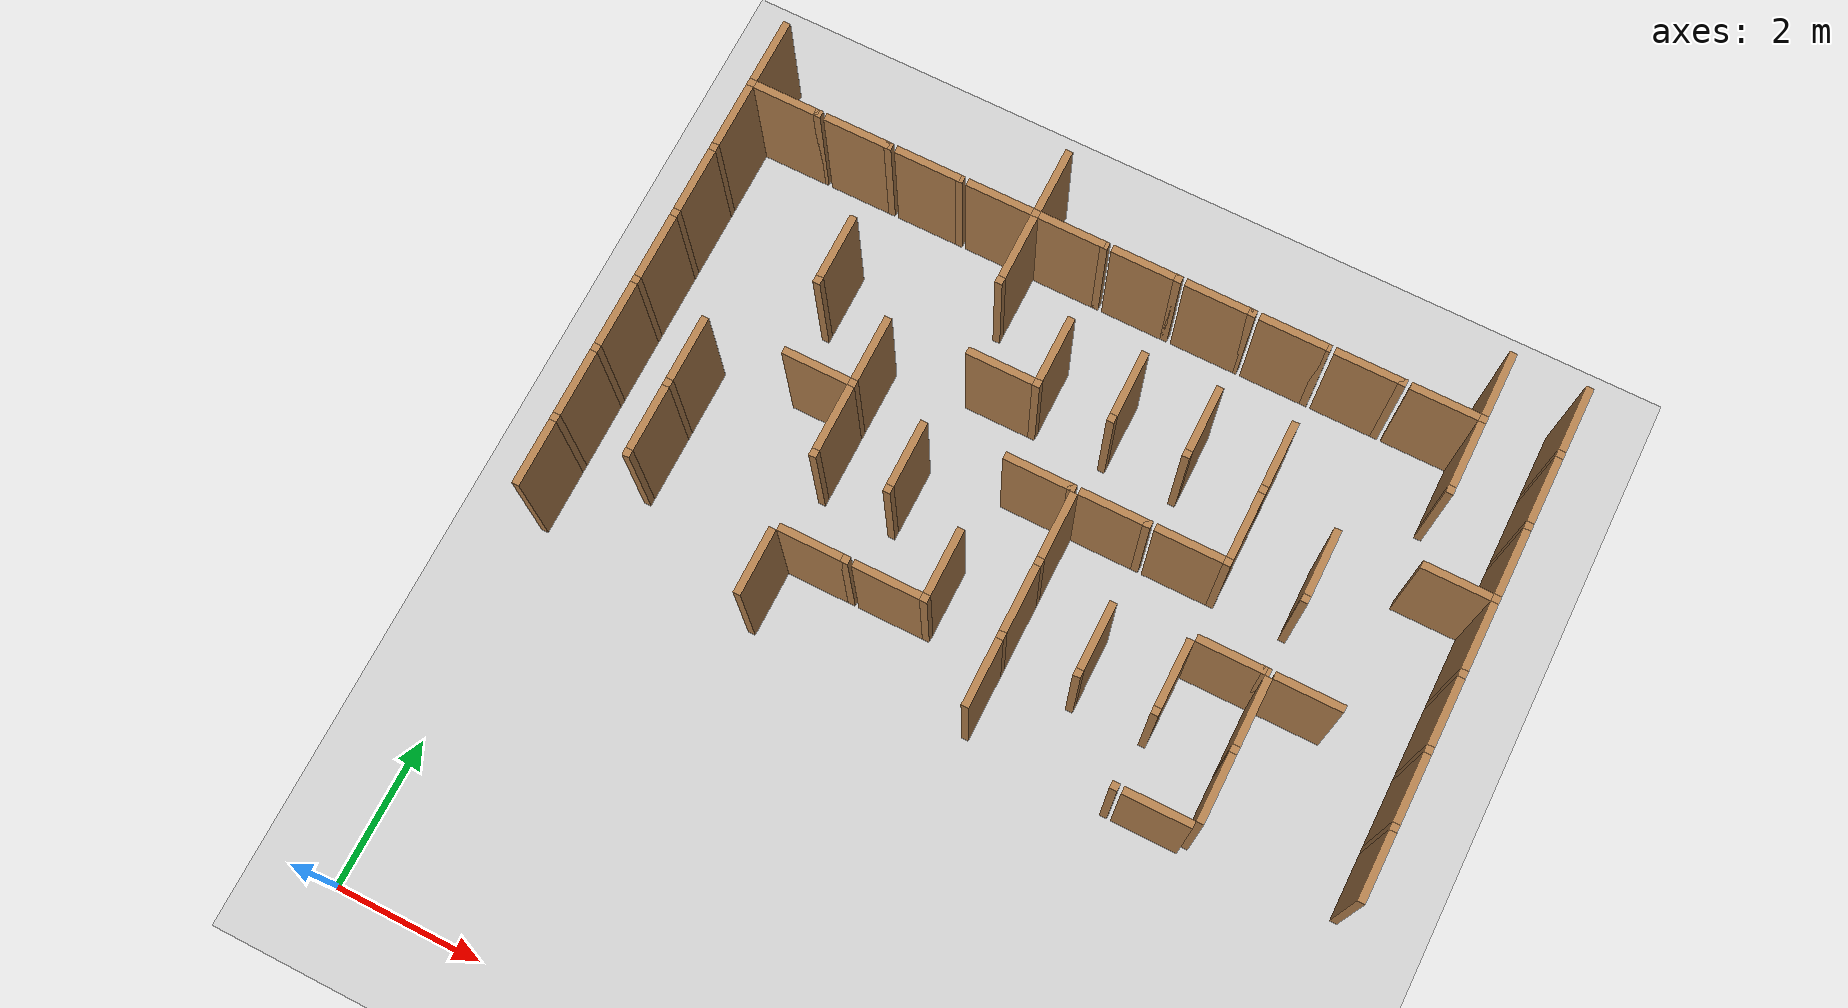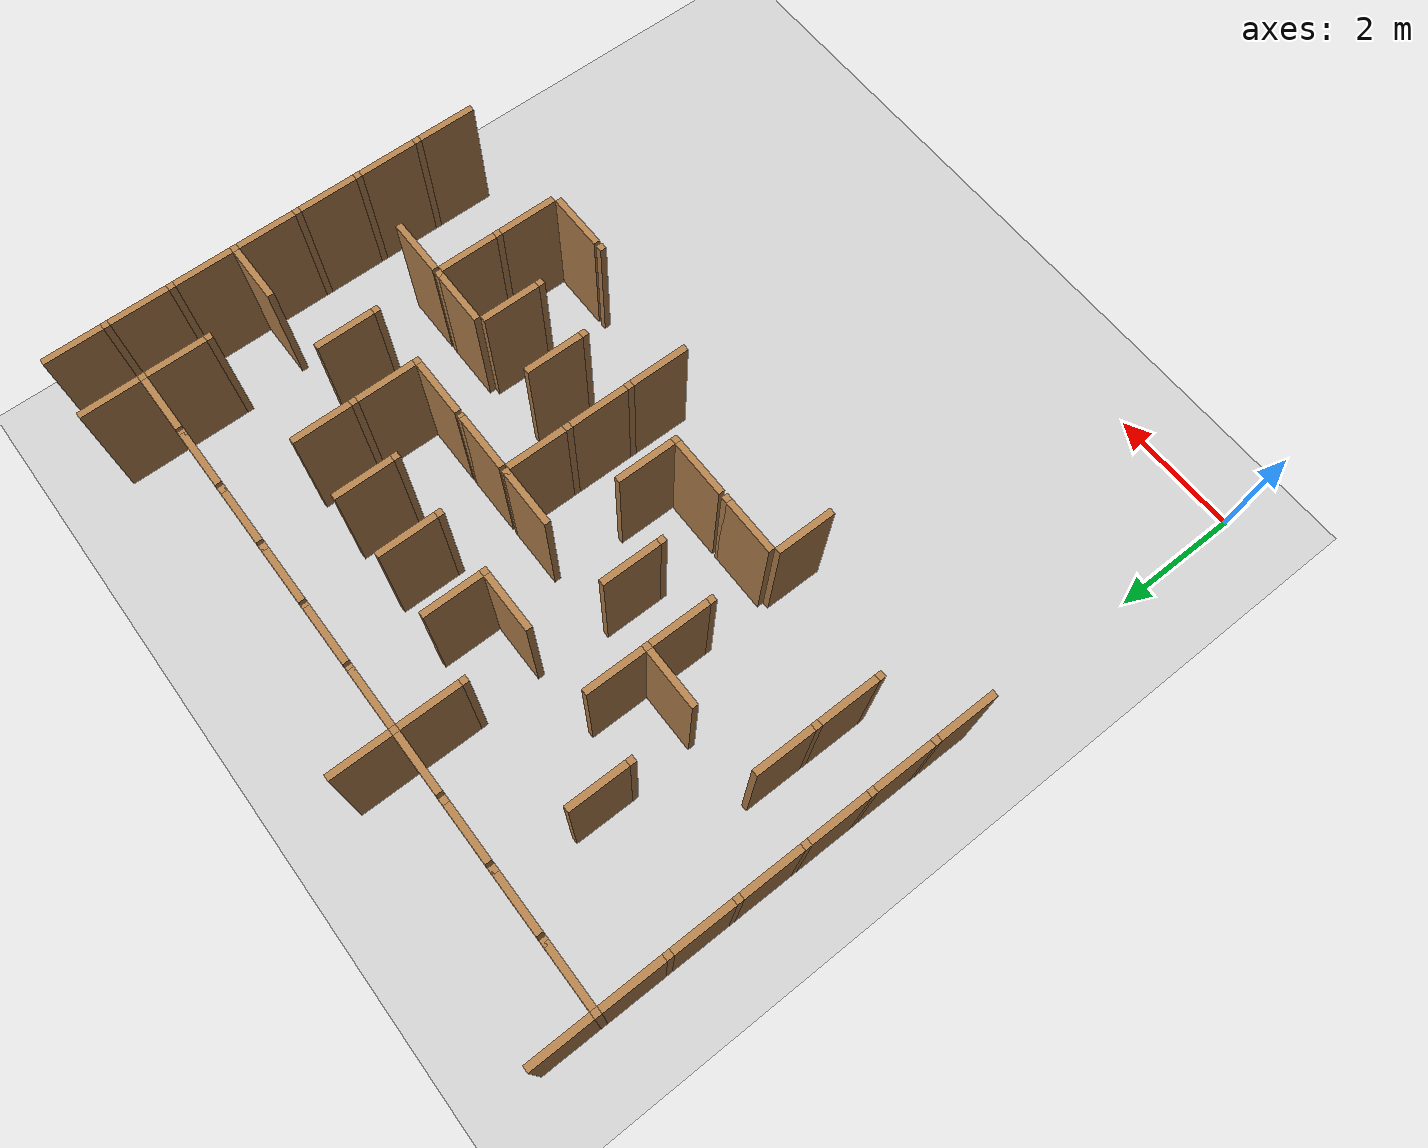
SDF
<sdf version="1.6">
 <world name="default">
  <include><uri>model://sun</uri></include>
  <model name="ground_plane">
   <static>true</static>
   <link name="link">
    <collision name="collision"><geometry><plane><size>12.0 12.0</size></plane></geometry></collision>
    <visual name="visual">
     <cast_shadows>false</cast_shadows>
     <geometry><plane><size>12.0 12.0</size></plane></geometry>
     <material>
      <script><uri>file://media/materials/scripts/gazebo.material</uri><name>Gazebo/Grey</name></script>
     </material>
    </visual>
   </link>
   <pose>6.0 6.0 0 0 0 0</pose>
  </model>
  <model name="vwall_5_0">
   <pose>0.0 5.5 1.0 0 0 0</pose>
   <link name="link">
    <collision name="collision"><geometry><box><size>0.1 0.9 2</size></box></geometry></collision>
    <visual name="visual">
     <geometry><box><size>0.1 0.9 2</size></box></geometry>
     <material>
      <script><uri>file://media/materials/scripts/gazebo.material</uri><name>Gazebo/Wood</name></script>
     </material>
    </visual>
   </link>
  </model>
  <model name="vwall_5_3">
   <pose>3.0 5.5 1.0 0 0 0</pose>
   <link name="link">
    <collision name="collision"><geometry><box><size>0.1 0.9 2</size></box></geometry></collision>
    <visual name="visual">
     <geometry><box><size>0.1 0.9 2</size></box></geometry>
     <material>
      <script><uri>file://media/materials/scripts/gazebo.material</uri><name>Gazebo/Wood</name></script>
     </material>
    </visual>
   </link>
  </model>
  <model name="vwall_5_6">
   <pose>6.0 5.5 1.0 0 0 0</pose>
   <link name="link">
    <collision name="collision"><geometry><box><size>0.1 0.9 2</size></box></geometry></collision>
    <visual name="visual">
     <geometry><box><size>0.1 0.9 2</size></box></geometry>
     <material>
      <script><uri>file://media/materials/scripts/gazebo.material</uri><name>Gazebo/Wood</name></script>
     </material>
    </visual>
   </link>
  </model>
  <model name="vwall_5_9">
   <pose>9.0 5.5 1.0 0 0 0</pose>
   <link name="link">
    <collision name="collision"><geometry><box><size>0.1 0.9 2</size></box></geometry></collision>
    <visual name="visual">
     <geometry><box><size>0.1 0.9 2</size></box></geometry>
     <material>
      <script><uri>file://media/materials/scripts/gazebo.material</uri><name>Gazebo/Wood</name></script>
     </material>
    </visual>
   </link>
  </model>
  <model name="vwall_5_11">
   <pose>11.0 5.5 1.0 0 0 0</pose>
   <link name="link">
    <collision name="collision"><geometry><box><size>0.1 0.9 2</size></box></geometry></collision>
    <visual name="visual">
     <geometry><box><size>0.1 0.9 2</size></box></geometry>
     <material>
      <script><uri>file://media/materials/scripts/gazebo.material</uri><name>Gazebo/Wood</name></script>
     </material>
    </visual>
   </link>
  </model>
  <model name="vwall_6_0">
   <pose>0.0 6.5 1.0 0 0 0</pose>
   <link name="link">
    <collision name="collision"><geometry><box><size>0.1 0.9 2</size></box></geometry></collision>
    <visual name="visual">
     <geometry><box><size>0.1 0.9 2</size></box></geometry>
     <material>
      <script><uri>file://media/materials/scripts/gazebo.material</uri><name>Gazebo/Wood</name></script>
     </material>
    </visual>
   </link>
  </model>
  <model name="joint_0.0_6.0">
   <pose>0.0 6.0 1.0 0 0 0</pose>
   <link name="link">
    <collision name="collision"><geometry><box><size>0.1 0.1 2</size></box></geometry></collision>
    <visual name="visual">
     <geometry><box><size>0.1 0.1 2</size></box></geometry>
     <material>
      <script><uri>file://media/materials/scripts/gazebo.material</uri><name>Gazebo/Wood</name></script>
     </material>
    </visual>
   </link>
  </model>
  <model name="vwall_6_1">
   <pose>1.0 6.5 1.0 0 0 0</pose>
   <link name="link">
    <collision name="collision"><geometry><box><size>0.1 0.9 2</size></box></geometry></collision>
    <visual name="visual">
     <geometry><box><size>0.1 0.9 2</size></box></geometry>
     <material>
      <script><uri>file://media/materials/scripts/gazebo.material</uri><name>Gazebo/Wood</name></script>
     </material>
    </visual>
   </link>
  </model>
  <model name="joint_1.0_6.0">
   <pose>1.0 6.0 1.0 0 0 0</pose>
   <link name="link">
    <collision name="collision"><geometry><box><size>0.1 0.1 2</size></box></geometry></collision>
    <visual name="visual">
     <geometry><box><size>0.1 0.1 2</size></box></geometry>
     <material>
      <script><uri>file://media/materials/scripts/gazebo.material</uri><name>Gazebo/Wood</name></script>
     </material>
    </visual>
   </link>
  </model>
  <model name="vwall_6_5">
   <pose>5.0 6.5 1.0 0 0 0</pose>
   <link name="link">
    <collision name="collision"><geometry><box><size>0.1 0.9 2</size></box></geometry></collision>
    <visual name="visual">
     <geometry><box><size>0.1 0.9 2</size></box></geometry>
     <material>
      <script><uri>file://media/materials/scripts/gazebo.material</uri><name>Gazebo/Wood</name></script>
     </material>
    </visual>
   </link>
  </model>
  <model name="joint_5.0_6.0">
   <pose>5.0 6.0 1.0 0 0 0</pose>
   <link name="link">
    <collision name="collision"><geometry><box><size>0.1 0.1 2</size></box></geometry></collision>
    <visual name="visual">
     <geometry><box><size>0.1 0.1 2</size></box></geometry>
     <material>
      <script><uri>file://media/materials/scripts/gazebo.material</uri><name>Gazebo/Wood</name></script>
     </material>
    </visual>
   </link>
  </model>
  <model name="vwall_6_6">
   <pose>6.0 6.5 1.0 0 0 0</pose>
   <link name="link">
    <collision name="collision"><geometry><box><size>0.1 0.9 2</size></box></geometry></collision>
    <visual name="visual">
     <geometry><box><size>0.1 0.9 2</size></box></geometry>
     <material>
      <script><uri>file://media/materials/scripts/gazebo.material</uri><name>Gazebo/Wood</name></script>
     </material>
    </visual>
   </link>
  </model>
  <model name="joint_6.0_6.0">
   <pose>6.0 6.0 1.0 0 0 0</pose>
   <link name="link">
    <collision name="collision"><geometry><box><size>0.1 0.1 2</size></box></geometry></collision>
    <visual name="visual">
     <geometry><box><size>0.1 0.1 2</size></box></geometry>
     <material>
      <script><uri>file://media/materials/scripts/gazebo.material</uri><name>Gazebo/Wood</name></script>
     </material>
    </visual>
   </link>
  </model>
  <model name="vwall_6_7">
   <pose>7.0 6.5 1.0 0 0 0</pose>
   <link name="link">
    <collision name="collision"><geometry><box><size>0.1 0.9 2</size></box></geometry></collision>
    <visual name="visual">
     <geometry><box><size>0.1 0.9 2</size></box></geometry>
     <material>
      <script><uri>file://media/materials/scripts/gazebo.material</uri><name>Gazebo/Wood</name></script>
     </material>
    </visual>
   </link>
  </model>
  <model name="joint_7.0_6.0">
   <pose>7.0 6.0 1.0 0 0 0</pose>
   <link name="link">
    <collision name="collision"><geometry><box><size>0.1 0.1 2</size></box></geometry></collision>
    <visual name="visual">
     <geometry><box><size>0.1 0.1 2</size></box></geometry>
     <material>
      <script><uri>file://media/materials/scripts/gazebo.material</uri><name>Gazebo/Wood</name></script>
     </material>
    </visual>
   </link>
  </model>
  <model name="vwall_6_8">
   <pose>8.0 6.5 1.0 0 0 0</pose>
   <link name="link">
    <collision name="collision"><geometry><box><size>0.1 0.9 2</size></box></geometry></collision>
    <visual name="visual">
     <geometry><box><size>0.1 0.9 2</size></box></geometry>
     <material>
      <script><uri>file://media/materials/scripts/gazebo.material</uri><name>Gazebo/Wood</name></script>
     </material>
    </visual>
   </link>
  </model>
  <model name="joint_8.0_6.0">
   <pose>8.0 6.0 1.0 0 0 0</pose>
   <link name="link">
    <collision name="collision"><geometry><box><size>0.1 0.1 2</size></box></geometry></collision>
    <visual name="visual">
     <geometry><box><size>0.1 0.1 2</size></box></geometry>
     <material>
      <script><uri>file://media/materials/scripts/gazebo.material</uri><name>Gazebo/Wood</name></script>
     </material>
    </visual>
   </link>
  </model>
  <model name="vwall_6_9">
   <pose>9.0 6.5 1.0 0 0 0</pose>
   <link name="link">
    <collision name="collision"><geometry><box><size>0.1 0.9 2</size></box></geometry></collision>
    <visual name="visual">
     <geometry><box><size>0.1 0.9 2</size></box></geometry>
     <material>
      <script><uri>file://media/materials/scripts/gazebo.material</uri><name>Gazebo/Wood</name></script>
     </material>
    </visual>
   </link>
  </model>
  <model name="joint_9.0_6.0">
   <pose>9.0 6.0 1.0 0 0 0</pose>
   <link name="link">
    <collision name="collision"><geometry><box><size>0.1 0.1 2</size></box></geometry></collision>
    <visual name="visual">
     <geometry><box><size>0.1 0.1 2</size></box></geometry>
     <material>
      <script><uri>file://media/materials/scripts/gazebo.material</uri><name>Gazebo/Wood</name></script>
     </material>
    </visual>
   </link>
  </model>
  <model name="vwall_6_11">
   <pose>11.0 6.5 1.0 0 0 0</pose>
   <link name="link">
    <collision name="collision"><geometry><box><size>0.1 0.9 2</size></box></geometry></collision>
    <visual name="visual">
     <geometry><box><size>0.1 0.9 2</size></box></geometry>
     <material>
      <script><uri>file://media/materials/scripts/gazebo.material</uri><name>Gazebo/Wood</name></script>
     </material>
    </visual>
   </link>
  </model>
  <model name="joint_11.0_6.0">
   <pose>11.0 6.0 1.0 0 0 0</pose>
   <link name="link">
    <collision name="collision"><geometry><box><size>0.1 0.1 2</size></box></geometry></collision>
    <visual name="visual">
     <geometry><box><size>0.1 0.1 2</size></box></geometry>
     <material>
      <script><uri>file://media/materials/scripts/gazebo.material</uri><name>Gazebo/Wood</name></script>
     </material>
    </visual>
   </link>
  </model>
  <model name="vwall_7_0">
   <pose>0.0 7.5 1.0 0 0 0</pose>
   <link name="link">
    <collision name="collision"><geometry><box><size>0.1 0.9 2</size></box></geometry></collision>
    <visual name="visual">
     <geometry><box><size>0.1 0.9 2</size></box></geometry>
     <material>
      <script><uri>file://media/materials/scripts/gazebo.material</uri><name>Gazebo/Wood</name></script>
     </material>
    </visual>
   </link>
  </model>
  <model name="joint_0.0_7.0">
   <pose>0.0 7.0 1.0 0 0 0</pose>
   <link name="link">
    <collision name="collision"><geometry><box><size>0.1 0.1 2</size></box></geometry></collision>
    <visual name="visual">
     <geometry><box><size>0.1 0.1 2</size></box></geometry>
     <material>
      <script><uri>file://media/materials/scripts/gazebo.material</uri><name>Gazebo/Wood</name></script>
     </material>
    </visual>
   </link>
  </model>
  <model name="vwall_7_1">
   <pose>1.0 7.5 1.0 0 0 0</pose>
   <link name="link">
    <collision name="collision"><geometry><box><size>0.1 0.9 2</size></box></geometry></collision>
    <visual name="visual">
     <geometry><box><size>0.1 0.9 2</size></box></geometry>
     <material>
      <script><uri>file://media/materials/scripts/gazebo.material</uri><name>Gazebo/Wood</name></script>
     </material>
    </visual>
   </link>
  </model>
  <model name="joint_1.0_7.0">
   <pose>1.0 7.0 1.0 0 0 0</pose>
   <link name="link">
    <collision name="collision"><geometry><box><size>0.1 0.1 2</size></box></geometry></collision>
    <visual name="visual">
     <geometry><box><size>0.1 0.1 2</size></box></geometry>
     <material>
      <script><uri>file://media/materials/scripts/gazebo.material</uri><name>Gazebo/Wood</name></script>
     </material>
    </visual>
   </link>
  </model>
  <model name="vwall_7_3">
   <pose>3.0 7.5 1.0 0 0 0</pose>
   <link name="link">
    <collision name="collision"><geometry><box><size>0.1 0.9 2</size></box></geometry></collision>
    <visual name="visual">
     <geometry><box><size>0.1 0.9 2</size></box></geometry>
     <material>
      <script><uri>file://media/materials/scripts/gazebo.material</uri><name>Gazebo/Wood</name></script>
     </material>
    </visual>
   </link>
  </model>
  <model name="joint_3.0_7.0">
   <pose>3.0 7.0 1.0 0 0 0</pose>
   <link name="link">
    <collision name="collision"><geometry><box><size>0.1 0.1 2</size></box></geometry></collision>
    <visual name="visual">
     <geometry><box><size>0.1 0.1 2</size></box></geometry>
     <material>
      <script><uri>file://media/materials/scripts/gazebo.material</uri><name>Gazebo/Wood</name></script>
     </material>
    </visual>
   </link>
  </model>
  <model name="vwall_7_4">
   <pose>4.0 7.5 1.0 0 0 0</pose>
   <link name="link">
    <collision name="collision"><geometry><box><size>0.1 0.9 2</size></box></geometry></collision>
    <visual name="visual">
     <geometry><box><size>0.1 0.9 2</size></box></geometry>
     <material>
      <script><uri>file://media/materials/scripts/gazebo.material</uri><name>Gazebo/Wood</name></script>
     </material>
    </visual>
   </link>
  </model>
  <model name="joint_4.0_7.0">
   <pose>4.0 7.0 1.0 0 0 0</pose>
   <link name="link">
    <collision name="collision"><geometry><box><size>0.1 0.1 2</size></box></geometry></collision>
    <visual name="visual">
     <geometry><box><size>0.1 0.1 2</size></box></geometry>
     <material>
      <script><uri>file://media/materials/scripts/gazebo.material</uri><name>Gazebo/Wood</name></script>
     </material>
    </visual>
   </link>
  </model>
  <model name="vwall_7_6">
   <pose>6.0 7.5 1.0 0 0 0</pose>
   <link name="link">
    <collision name="collision"><geometry><box><size>0.1 0.9 2</size></box></geometry></collision>
    <visual name="visual">
     <geometry><box><size>0.1 0.9 2</size></box></geometry>
     <material>
      <script><uri>file://media/materials/scripts/gazebo.material</uri><name>Gazebo/Wood</name></script>
     </material>
    </visual>
   </link>
  </model>
  <model name="joint_6.0_7.0">
   <pose>6.0 7.0 1.0 0 0 0</pose>
   <link name="link">
    <collision name="collision"><geometry><box><size>0.1 0.1 2</size></box></geometry></collision>
    <visual name="visual">
     <geometry><box><size>0.1 0.1 2</size></box></geometry>
     <material>
      <script><uri>file://media/materials/scripts/gazebo.material</uri><name>Gazebo/Wood</name></script>
     </material>
    </visual>
   </link>
  </model>
  <model name="vwall_7_11">
   <pose>11.0 7.5 1.0 0 0 0</pose>
   <link name="link">
    <collision name="collision"><geometry><box><size>0.1 0.9 2</size></box></geometry></collision>
    <visual name="visual">
     <geometry><box><size>0.1 0.9 2</size></box></geometry>
     <material>
      <script><uri>file://media/materials/scripts/gazebo.material</uri><name>Gazebo/Wood</name></script>
     </material>
    </visual>
   </link>
  </model>
  <model name="joint_11.0_7.0">
   <pose>11.0 7.0 1.0 0 0 0</pose>
   <link name="link">
    <collision name="collision"><geometry><box><size>0.1 0.1 2</size></box></geometry></collision>
    <visual name="visual">
     <geometry><box><size>0.1 0.1 2</size></box></geometry>
     <material>
      <script><uri>file://media/materials/scripts/gazebo.material</uri><name>Gazebo/Wood</name></script>
     </material>
    </visual>
   </link>
  </model>
  <model name="vwall_8_0">
   <pose>0.0 8.5 1.0 0 0 0</pose>
   <link name="link">
    <collision name="collision"><geometry><box><size>0.1 0.9 2</size></box></geometry></collision>
    <visual name="visual">
     <geometry><box><size>0.1 0.9 2</size></box></geometry>
     <material>
      <script><uri>file://media/materials/scripts/gazebo.material</uri><name>Gazebo/Wood</name></script>
     </material>
    </visual>
   </link>
  </model>
  <model name="joint_0.0_8.0">
   <pose>0.0 8.0 1.0 0 0 0</pose>
   <link name="link">
    <collision name="collision"><geometry><box><size>0.1 0.1 2</size></box></geometry></collision>
    <visual name="visual">
     <geometry><box><size>0.1 0.1 2</size></box></geometry>
     <material>
      <script><uri>file://media/materials/scripts/gazebo.material</uri><name>Gazebo/Wood</name></script>
     </material>
    </visual>
   </link>
  </model>
  <model name="vwall_8_3">
   <pose>3.0 8.5 1.0 0 0 0</pose>
   <link name="link">
    <collision name="collision"><geometry><box><size>0.1 0.9 2</size></box></geometry></collision>
    <visual name="visual">
     <geometry><box><size>0.1 0.9 2</size></box></geometry>
     <material>
      <script><uri>file://media/materials/scripts/gazebo.material</uri><name>Gazebo/Wood</name></script>
     </material>
    </visual>
   </link>
  </model>
  <model name="joint_3.0_8.0">
   <pose>3.0 8.0 1.0 0 0 0</pose>
   <link name="link">
    <collision name="collision"><geometry><box><size>0.1 0.1 2</size></box></geometry></collision>
    <visual name="visual">
     <geometry><box><size>0.1 0.1 2</size></box></geometry>
     <material>
      <script><uri>file://media/materials/scripts/gazebo.material</uri><name>Gazebo/Wood</name></script>
     </material>
    </visual>
   </link>
  </model>
  <model name="vwall_8_8">
   <pose>8.0 8.5 1.0 0 0 0</pose>
   <link name="link">
    <collision name="collision"><geometry><box><size>0.1 0.9 2</size></box></geometry></collision>
    <visual name="visual">
     <geometry><box><size>0.1 0.9 2</size></box></geometry>
     <material>
      <script><uri>file://media/materials/scripts/gazebo.material</uri><name>Gazebo/Wood</name></script>
     </material>
    </visual>
   </link>
  </model>
  <model name="joint_8.0_8.0">
   <pose>8.0 8.0 1.0 0 0 0</pose>
   <link name="link">
    <collision name="collision"><geometry><box><size>0.1 0.1 2</size></box></geometry></collision>
    <visual name="visual">
     <geometry><box><size>0.1 0.1 2</size></box></geometry>
     <material>
      <script><uri>file://media/materials/scripts/gazebo.material</uri><name>Gazebo/Wood</name></script>
     </material>
    </visual>
   </link>
  </model>
  <model name="vwall_8_9">
   <pose>9.0 8.5 1.0 0 0 0</pose>
   <link name="link">
    <collision name="collision"><geometry><box><size>0.1 0.9 2</size></box></geometry></collision>
    <visual name="visual">
     <geometry><box><size>0.1 0.9 2</size></box></geometry>
     <material>
      <script><uri>file://media/materials/scripts/gazebo.material</uri><name>Gazebo/Wood</name></script>
     </material>
    </visual>
   </link>
  </model>
  <model name="joint_9.0_8.0">
   <pose>9.0 8.0 1.0 0 0 0</pose>
   <link name="link">
    <collision name="collision"><geometry><box><size>0.1 0.1 2</size></box></geometry></collision>
    <visual name="visual">
     <geometry><box><size>0.1 0.1 2</size></box></geometry>
     <material>
      <script><uri>file://media/materials/scripts/gazebo.material</uri><name>Gazebo/Wood</name></script>
     </material>
    </visual>
   </link>
  </model>
  <model name="vwall_8_11">
   <pose>11.0 8.5 1.0 0 0 0</pose>
   <link name="link">
    <collision name="collision"><geometry><box><size>0.1 0.9 2</size></box></geometry></collision>
    <visual name="visual">
     <geometry><box><size>0.1 0.9 2</size></box></geometry>
     <material>
      <script><uri>file://media/materials/scripts/gazebo.material</uri><name>Gazebo/Wood</name></script>
     </material>
    </visual>
   </link>
  </model>
  <model name="joint_11.0_8.0">
   <pose>11.0 8.0 1.0 0 0 0</pose>
   <link name="link">
    <collision name="collision"><geometry><box><size>0.1 0.1 2</size></box></geometry></collision>
    <visual name="visual">
     <geometry><box><size>0.1 0.1 2</size></box></geometry>
     <material>
      <script><uri>file://media/materials/scripts/gazebo.material</uri><name>Gazebo/Wood</name></script>
     </material>
    </visual>
   </link>
  </model>
  <model name="vwall_9_0">
   <pose>0.0 9.5 1.0 0 0 0</pose>
   <link name="link">
    <collision name="collision"><geometry><box><size>0.1 0.9 2</size></box></geometry></collision>
    <visual name="visual">
     <geometry><box><size>0.1 0.9 2</size></box></geometry>
     <material>
      <script><uri>file://media/materials/scripts/gazebo.material</uri><name>Gazebo/Wood</name></script>
     </material>
    </visual>
   </link>
  </model>
  <model name="joint_0.0_9.0">
   <pose>0.0 9.0 1.0 0 0 0</pose>
   <link name="link">
    <collision name="collision"><geometry><box><size>0.1 0.1 2</size></box></geometry></collision>
    <visual name="visual">
     <geometry><box><size>0.1 0.1 2</size></box></geometry>
     <material>
      <script><uri>file://media/materials/scripts/gazebo.material</uri><name>Gazebo/Wood</name></script>
     </material>
    </visual>
   </link>
  </model>
  <model name="vwall_9_2">
   <pose>2.0 9.5 1.0 0 0 0</pose>
   <link name="link">
    <collision name="collision"><geometry><box><size>0.1 0.9 2</size></box></geometry></collision>
    <visual name="visual">
     <geometry><box><size>0.1 0.9 2</size></box></geometry>
     <material>
      <script><uri>file://media/materials/scripts/gazebo.material</uri><name>Gazebo/Wood</name></script>
     </material>
    </visual>
   </link>
  </model>
  <model name="joint_2.0_9.0">
   <pose>2.0 9.0 1.0 0 0 0</pose>
   <link name="link">
    <collision name="collision"><geometry><box><size>0.1 0.1 2</size></box></geometry></collision>
    <visual name="visual">
     <geometry><box><size>0.1 0.1 2</size></box></geometry>
     <material>
      <script><uri>file://media/materials/scripts/gazebo.material</uri><name>Gazebo/Wood</name></script>
     </material>
    </visual>
   </link>
  </model>
  <model name="vwall_9_5">
   <pose>5.0 9.5 1.0 0 0 0</pose>
   <link name="link">
    <collision name="collision"><geometry><box><size>0.1 0.9 2</size></box></geometry></collision>
    <visual name="visual">
     <geometry><box><size>0.1 0.9 2</size></box></geometry>
     <material>
      <script><uri>file://media/materials/scripts/gazebo.material</uri><name>Gazebo/Wood</name></script>
     </material>
    </visual>
   </link>
  </model>
  <model name="joint_5.0_9.0">
   <pose>5.0 9.0 1.0 0 0 0</pose>
   <link name="link">
    <collision name="collision"><geometry><box><size>0.1 0.1 2</size></box></geometry></collision>
    <visual name="visual">
     <geometry><box><size>0.1 0.1 2</size></box></geometry>
     <material>
      <script><uri>file://media/materials/scripts/gazebo.material</uri><name>Gazebo/Wood</name></script>
     </material>
    </visual>
   </link>
  </model>
  <model name="vwall_9_6">
   <pose>6.0 9.5 1.0 0 0 0</pose>
   <link name="link">
    <collision name="collision"><geometry><box><size>0.1 0.9 2</size></box></geometry></collision>
    <visual name="visual">
     <geometry><box><size>0.1 0.9 2</size></box></geometry>
     <material>
      <script><uri>file://media/materials/scripts/gazebo.material</uri><name>Gazebo/Wood</name></script>
     </material>
    </visual>
   </link>
  </model>
  <model name="joint_6.0_9.0">
   <pose>6.0 9.0 1.0 0 0 0</pose>
   <link name="link">
    <collision name="collision"><geometry><box><size>0.1 0.1 2</size></box></geometry></collision>
    <visual name="visual">
     <geometry><box><size>0.1 0.1 2</size></box></geometry>
     <material>
      <script><uri>file://media/materials/scripts/gazebo.material</uri><name>Gazebo/Wood</name></script>
     </material>
    </visual>
   </link>
  </model>
  <model name="vwall_9_7">
   <pose>7.0 9.5 1.0 0 0 0</pose>
   <link name="link">
    <collision name="collision"><geometry><box><size>0.1 0.9 2</size></box></geometry></collision>
    <visual name="visual">
     <geometry><box><size>0.1 0.9 2</size></box></geometry>
     <material>
      <script><uri>file://media/materials/scripts/gazebo.material</uri><name>Gazebo/Wood</name></script>
     </material>
    </visual>
   </link>
  </model>
  <model name="joint_7.0_9.0">
   <pose>7.0 9.0 1.0 0 0 0</pose>
   <link name="link">
    <collision name="collision"><geometry><box><size>0.1 0.1 2</size></box></geometry></collision>
    <visual name="visual">
     <geometry><box><size>0.1 0.1 2</size></box></geometry>
     <material>
      <script><uri>file://media/materials/scripts/gazebo.material</uri><name>Gazebo/Wood</name></script>
     </material>
    </visual>
   </link>
  </model>
  <model name="vwall_9_8">
   <pose>8.0 9.5 1.0 0 0 0</pose>
   <link name="link">
    <collision name="collision"><geometry><box><size>0.1 0.9 2</size></box></geometry></collision>
    <visual name="visual">
     <geometry><box><size>0.1 0.9 2</size></box></geometry>
     <material>
      <script><uri>file://media/materials/scripts/gazebo.material</uri><name>Gazebo/Wood</name></script>
     </material>
    </visual>
   </link>
  </model>
  <model name="joint_8.0_9.0">
   <pose>8.0 9.0 1.0 0 0 0</pose>
   <link name="link">
    <collision name="collision"><geometry><box><size>0.1 0.1 2</size></box></geometry></collision>
    <visual name="visual">
     <geometry><box><size>0.1 0.1 2</size></box></geometry>
     <material>
      <script><uri>file://media/materials/scripts/gazebo.material</uri><name>Gazebo/Wood</name></script>
     </material>
    </visual>
   </link>
  </model>
  <model name="vwall_9_11">
   <pose>11.0 9.5 1.0 0 0 0</pose>
   <link name="link">
    <collision name="collision"><geometry><box><size>0.1 0.9 2</size></box></geometry></collision>
    <visual name="visual">
     <geometry><box><size>0.1 0.9 2</size></box></geometry>
     <material>
      <script><uri>file://media/materials/scripts/gazebo.material</uri><name>Gazebo/Wood</name></script>
     </material>
    </visual>
   </link>
  </model>
  <model name="joint_11.0_9.0">
   <pose>11.0 9.0 1.0 0 0 0</pose>
   <link name="link">
    <collision name="collision"><geometry><box><size>0.1 0.1 2</size></box></geometry></collision>
    <visual name="visual">
     <geometry><box><size>0.1 0.1 2</size></box></geometry>
     <material>
      <script><uri>file://media/materials/scripts/gazebo.material</uri><name>Gazebo/Wood</name></script>
     </material>
    </visual>
   </link>
  </model>
  <model name="vwall_10_0">
   <pose>0.0 10.5 1.0 0 0 0</pose>
   <link name="link">
    <collision name="collision"><geometry><box><size>0.1 0.9 2</size></box></geometry></collision>
    <visual name="visual">
     <geometry><box><size>0.1 0.9 2</size></box></geometry>
     <material>
      <script><uri>file://media/materials/scripts/gazebo.material</uri><name>Gazebo/Wood</name></script>
     </material>
    </visual>
   </link>
  </model>
  <model name="joint_0.0_10.0">
   <pose>0.0 10.0 1.0 0 0 0</pose>
   <link name="link">
    <collision name="collision"><geometry><box><size>0.1 0.1 2</size></box></geometry></collision>
    <visual name="visual">
     <geometry><box><size>0.1 0.1 2</size></box></geometry>
     <material>
      <script><uri>file://media/materials/scripts/gazebo.material</uri><name>Gazebo/Wood</name></script>
     </material>
    </visual>
   </link>
  </model>
  <model name="vwall_10_4">
   <pose>4.0 10.5 1.0 0 0 0</pose>
   <link name="link">
    <collision name="collision"><geometry><box><size>0.1 0.9 2</size></box></geometry></collision>
    <visual name="visual">
     <geometry><box><size>0.1 0.9 2</size></box></geometry>
     <material>
      <script><uri>file://media/materials/scripts/gazebo.material</uri><name>Gazebo/Wood</name></script>
     </material>
    </visual>
   </link>
  </model>
  <model name="joint_4.0_10.0">
   <pose>4.0 10.0 1.0 0 0 0</pose>
   <link name="link">
    <collision name="collision"><geometry><box><size>0.1 0.1 2</size></box></geometry></collision>
    <visual name="visual">
     <geometry><box><size>0.1 0.1 2</size></box></geometry>
     <material>
      <script><uri>file://media/materials/scripts/gazebo.material</uri><name>Gazebo/Wood</name></script>
     </material>
    </visual>
   </link>
  </model>
  <model name="vwall_10_10">
   <pose>10.0 10.5 1.0 0 0 0</pose>
   <link name="link">
    <collision name="collision"><geometry><box><size>0.1 0.9 2</size></box></geometry></collision>
    <visual name="visual">
     <geometry><box><size>0.1 0.9 2</size></box></geometry>
     <material>
      <script><uri>file://media/materials/scripts/gazebo.material</uri><name>Gazebo/Wood</name></script>
     </material>
    </visual>
   </link>
  </model>
  <model name="joint_10.0_10.0">
   <pose>10.0 10.0 1.0 0 0 0</pose>
   <link name="link">
    <collision name="collision"><geometry><box><size>0.1 0.1 2</size></box></geometry></collision>
    <visual name="visual">
     <geometry><box><size>0.1 0.1 2</size></box></geometry>
     <material>
      <script><uri>file://media/materials/scripts/gazebo.material</uri><name>Gazebo/Wood</name></script>
     </material>
    </visual>
   </link>
  </model>
  <model name="vwall_10_11">
   <pose>11.0 10.5 1.0 0 0 0</pose>
   <link name="link">
    <collision name="collision"><geometry><box><size>0.1 0.9 2</size></box></geometry></collision>
    <visual name="visual">
     <geometry><box><size>0.1 0.9 2</size></box></geometry>
     <material>
      <script><uri>file://media/materials/scripts/gazebo.material</uri><name>Gazebo/Wood</name></script>
     </material>
    </visual>
   </link>
  </model>
  <model name="joint_11.0_10.0">
   <pose>11.0 10.0 1.0 0 0 0</pose>
   <link name="link">
    <collision name="collision"><geometry><box><size>0.1 0.1 2</size></box></geometry></collision>
    <visual name="visual">
     <geometry><box><size>0.1 0.1 2</size></box></geometry>
     <material>
      <script><uri>file://media/materials/scripts/gazebo.material</uri><name>Gazebo/Wood</name></script>
     </material>
    </visual>
   </link>
  </model>
  <model name="vwall_11_0">
   <pose>0.0 11.5 1.0 0 0 0</pose>
   <link name="link">
    <collision name="collision"><geometry><box><size>0.1 0.9 2</size></box></geometry></collision>
    <visual name="visual">
     <geometry><box><size>0.1 0.9 2</size></box></geometry>
     <material>
      <script><uri>file://media/materials/scripts/gazebo.material</uri><name>Gazebo/Wood</name></script>
     </material>
    </visual>
   </link>
  </model>
  <model name="joint_0.0_11.0">
   <pose>0.0 11.0 1.0 0 0 0</pose>
   <link name="link">
    <collision name="collision"><geometry><box><size>0.1 0.1 2</size></box></geometry></collision>
    <visual name="visual">
     <geometry><box><size>0.1 0.1 2</size></box></geometry>
     <material>
      <script><uri>file://media/materials/scripts/gazebo.material</uri><name>Gazebo/Wood</name></script>
     </material>
    </visual>
   </link>
  </model>
  <model name="vwall_11_4">
   <pose>4.0 11.5 1.0 0 0 0</pose>
   <link name="link">
    <collision name="collision"><geometry><box><size>0.1 0.9 2</size></box></geometry></collision>
    <visual name="visual">
     <geometry><box><size>0.1 0.9 2</size></box></geometry>
     <material>
      <script><uri>file://media/materials/scripts/gazebo.material</uri><name>Gazebo/Wood</name></script>
     </material>
    </visual>
   </link>
  </model>
  <model name="joint_4.0_11.0">
   <pose>4.0 11.0 1.0 0 0 0</pose>
   <link name="link">
    <collision name="collision"><geometry><box><size>0.1 0.1 2</size></box></geometry></collision>
    <visual name="visual">
     <geometry><box><size>0.1 0.1 2</size></box></geometry>
     <material>
      <script><uri>file://media/materials/scripts/gazebo.material</uri><name>Gazebo/Wood</name></script>
     </material>
    </visual>
   </link>
  </model>
  <model name="vwall_11_10">
   <pose>10.0 11.5 1.0 0 0 0</pose>
   <link name="link">
    <collision name="collision"><geometry><box><size>0.1 0.9 2</size></box></geometry></collision>
    <visual name="visual">
     <geometry><box><size>0.1 0.9 2</size></box></geometry>
     <material>
      <script><uri>file://media/materials/scripts/gazebo.material</uri><name>Gazebo/Wood</name></script>
     </material>
    </visual>
   </link>
  </model>
  <model name="joint_10.0_11.0">
   <pose>10.0 11.0 1.0 0 0 0</pose>
   <link name="link">
    <collision name="collision"><geometry><box><size>0.1 0.1 2</size></box></geometry></collision>
    <visual name="visual">
     <geometry><box><size>0.1 0.1 2</size></box></geometry>
     <material>
      <script><uri>file://media/materials/scripts/gazebo.material</uri><name>Gazebo/Wood</name></script>
     </material>
    </visual>
   </link>
  </model>
  <model name="vwall_11_11">
   <pose>11.0 11.5 1.0 0 0 0</pose>
   <link name="link">
    <collision name="collision"><geometry><box><size>0.1 0.9 2</size></box></geometry></collision>
    <visual name="visual">
     <geometry><box><size>0.1 0.9 2</size></box></geometry>
     <material>
      <script><uri>file://media/materials/scripts/gazebo.material</uri><name>Gazebo/Wood</name></script>
     </material>
    </visual>
   </link>
  </model>
  <model name="joint_11.0_11.0">
   <pose>11.0 11.0 1.0 0 0 0</pose>
   <link name="link">
    <collision name="collision"><geometry><box><size>0.1 0.1 2</size></box></geometry></collision>
    <visual name="visual">
     <geometry><box><size>0.1 0.1 2</size></box></geometry>
     <material>
      <script><uri>file://media/materials/scripts/gazebo.material</uri><name>Gazebo/Wood</name></script>
     </material>
    </visual>
   </link>
  </model>
  <model name="joint_7.95_5.0">
   <pose>7.95 5.0 1.0 0 0 0</pose>
   <link name="link">
    <collision name="collision"><geometry><box><size>0.1 0.1 2</size></box></geometry></collision>
    <visual name="visual">
     <geometry><box><size>0.1 0.1 2</size></box></geometry>
     <material>
      <script><uri>file://media/materials/scripts/gazebo.material</uri><name>Gazebo/Wood</name></script>
     </material>
    </visual>
   </link>
  </model>
  <model name="hwall_5_8">
   <pose>8.5 5.0 1.0 0 0 0</pose>
   <link name="link">
    <collision name="collision"><geometry><box><size>0.9 0.1 2</size></box></geometry></collision>
    <visual name="visual">
     <geometry><box><size>0.9 0.1 2</size></box></geometry>
     <material>
      <script><uri>file://media/materials/scripts/gazebo.material</uri><name>Gazebo/Wood</name></script>
     </material>
    </visual>
   </link>
  </model>
  <model name="hwall_6_3">
   <pose>3.5 6.0 1.0 0 0 0</pose>
   <link name="link">
    <collision name="collision"><geometry><box><size>0.9 0.1 2</size></box></geometry></collision>
    <visual name="visual">
     <geometry><box><size>0.9 0.1 2</size></box></geometry>
     <material>
      <script><uri>file://media/materials/scripts/gazebo.material</uri><name>Gazebo/Wood</name></script>
     </material>
    </visual>
   </link>
  </model>
  <model name="joint_3.95_6.0">
   <pose>3.95 6.0 1.0 0 0 0</pose>
   <link name="link">
    <collision name="collision"><geometry><box><size>0.1 0.1 2</size></box></geometry></collision>
    <visual name="visual">
     <geometry><box><size>0.1 0.1 2</size></box></geometry>
     <material>
      <script><uri>file://media/materials/scripts/gazebo.material</uri><name>Gazebo/Wood</name></script>
     </material>
    </visual>
   </link>
  </model>
  <model name="hwall_6_4">
   <pose>4.5 6.0 1.0 0 0 0</pose>
   <link name="link">
    <collision name="collision"><geometry><box><size>0.9 0.1 2</size></box></geometry></collision>
    <visual name="visual">
     <geometry><box><size>0.9 0.1 2</size></box></geometry>
     <material>
      <script><uri>file://media/materials/scripts/gazebo.material</uri><name>Gazebo/Wood</name></script>
     </material>
    </visual>
   </link>
  </model>
  <model name="hwall_7_8">
   <pose>8.5 7.0 1.0 0 0 0</pose>
   <link name="link">
    <collision name="collision"><geometry><box><size>0.9 0.1 2</size></box></geometry></collision>
    <visual name="visual">
     <geometry><box><size>0.9 0.1 2</size></box></geometry>
     <material>
      <script><uri>file://media/materials/scripts/gazebo.material</uri><name>Gazebo/Wood</name></script>
     </material>
    </visual>
   </link>
  </model>
  <model name="joint_8.95_7.0">
   <pose>8.95 7.0 1.0 0 0 0</pose>
   <link name="link">
    <collision name="collision"><geometry><box><size>0.1 0.1 2</size></box></geometry></collision>
    <visual name="visual">
     <geometry><box><size>0.1 0.1 2</size></box></geometry>
     <material>
      <script><uri>file://media/materials/scripts/gazebo.material</uri><name>Gazebo/Wood</name></script>
     </material>
    </visual>
   </link>
  </model>
  <model name="hwall_7_9">
   <pose>9.5 7.0 1.0 0 0 0</pose>
   <link name="link">
    <collision name="collision"><geometry><box><size>0.9 0.1 2</size></box></geometry></collision>
    <visual name="visual">
     <geometry><box><size>0.9 0.1 2</size></box></geometry>
     <material>
      <script><uri>file://media/materials/scripts/gazebo.material</uri><name>Gazebo/Wood</name></script>
     </material>
    </visual>
   </link>
  </model>
  <model name="hwall_8_2">
   <pose>2.5 8.0 1.0 0 0 0</pose>
   <link name="link">
    <collision name="collision"><geometry><box><size>0.9 0.1 2</size></box></geometry></collision>
    <visual name="visual">
     <geometry><box><size>0.9 0.1 2</size></box></geometry>
     <material>
      <script><uri>file://media/materials/scripts/gazebo.material</uri><name>Gazebo/Wood</name></script>
     </material>
    </visual>
   </link>
  </model>
  <model name="hwall_8_5">
   <pose>5.5 8.0 1.0 0 0 0</pose>
   <link name="link">
    <collision name="collision"><geometry><box><size>0.9 0.1 2</size></box></geometry></collision>
    <visual name="visual">
     <geometry><box><size>0.9 0.1 2</size></box></geometry>
     <material>
      <script><uri>file://media/materials/scripts/gazebo.material</uri><name>Gazebo/Wood</name></script>
     </material>
    </visual>
   </link>
  </model>
  <model name="joint_5.95_8.0">
   <pose>5.95 8.0 1.0 0 0 0</pose>
   <link name="link">
    <collision name="collision"><geometry><box><size>0.1 0.1 2</size></box></geometry></collision>
    <visual name="visual">
     <geometry><box><size>0.1 0.1 2</size></box></geometry>
     <material>
      <script><uri>file://media/materials/scripts/gazebo.material</uri><name>Gazebo/Wood</name></script>
     </material>
    </visual>
   </link>
  </model>
  <model name="hwall_8_6">
   <pose>6.5 8.0 1.0 0 0 0</pose>
   <link name="link">
    <collision name="collision"><geometry><box><size>0.9 0.1 2</size></box></geometry></collision>
    <visual name="visual">
     <geometry><box><size>0.9 0.1 2</size></box></geometry>
     <material>
      <script><uri>file://media/materials/scripts/gazebo.material</uri><name>Gazebo/Wood</name></script>
     </material>
    </visual>
   </link>
  </model>
  <model name="joint_6.95_8.0">
   <pose>6.95 8.0 1.0 0 0 0</pose>
   <link name="link">
    <collision name="collision"><geometry><box><size>0.1 0.1 2</size></box></geometry></collision>
    <visual name="visual">
     <geometry><box><size>0.1 0.1 2</size></box></geometry>
     <material>
      <script><uri>file://media/materials/scripts/gazebo.material</uri><name>Gazebo/Wood</name></script>
     </material>
    </visual>
   </link>
  </model>
  <model name="hwall_8_7">
   <pose>7.5 8.0 1.0 0 0 0</pose>
   <link name="link">
    <collision name="collision"><geometry><box><size>0.9 0.1 2</size></box></geometry></collision>
    <visual name="visual">
     <geometry><box><size>0.9 0.1 2</size></box></geometry>
     <material>
      <script><uri>file://media/materials/scripts/gazebo.material</uri><name>Gazebo/Wood</name></script>
     </material>
    </visual>
   </link>
  </model>
  <model name="hwall_9_4">
   <pose>4.5 9.0 1.0 0 0 0</pose>
   <link name="link">
    <collision name="collision"><geometry><box><size>0.9 0.1 2</size></box></geometry></collision>
    <visual name="visual">
     <geometry><box><size>0.9 0.1 2</size></box></geometry>
     <material>
      <script><uri>file://media/materials/scripts/gazebo.material</uri><name>Gazebo/Wood</name></script>
     </material>
    </visual>
   </link>
  </model>
  <model name="hwall_9_10">
   <pose>10.5 9.0 1.0 0 0 0</pose>
   <link name="link">
    <collision name="collision"><geometry><box><size>0.9 0.1 2</size></box></geometry></collision>
    <visual name="visual">
     <geometry><box><size>0.9 0.1 2</size></box></geometry>
     <material>
      <script><uri>file://media/materials/scripts/gazebo.material</uri><name>Gazebo/Wood</name></script>
     </material>
    </visual>
   </link>
  </model>
  <model name="hwall_11_0">
   <pose>0.5 11.0 1.0 0 0 0</pose>
   <link name="link">
    <collision name="collision"><geometry><box><size>0.9 0.1 2</size></box></geometry></collision>
    <visual name="visual">
     <geometry><box><size>0.9 0.1 2</size></box></geometry>
     <material>
      <script><uri>file://media/materials/scripts/gazebo.material</uri><name>Gazebo/Wood</name></script>
     </material>
    </visual>
   </link>
  </model>
  <model name="joint_0.95_11.0">
   <pose>0.95 11.0 1.0 0 0 0</pose>
   <link name="link">
    <collision name="collision"><geometry><box><size>0.1 0.1 2</size></box></geometry></collision>
    <visual name="visual">
     <geometry><box><size>0.1 0.1 2</size></box></geometry>
     <material>
      <script><uri>file://media/materials/scripts/gazebo.material</uri><name>Gazebo/Wood</name></script>
     </material>
    </visual>
   </link>
  </model>
  <model name="hwall_11_1">
   <pose>1.5 11.0 1.0 0 0 0</pose>
   <link name="link">
    <collision name="collision"><geometry><box><size>0.9 0.1 2</size></box></geometry></collision>
    <visual name="visual">
     <geometry><box><size>0.9 0.1 2</size></box></geometry>
     <material>
      <script><uri>file://media/materials/scripts/gazebo.material</uri><name>Gazebo/Wood</name></script>
     </material>
    </visual>
   </link>
  </model>
  <model name="joint_1.95_11.0">
   <pose>1.95 11.0 1.0 0 0 0</pose>
   <link name="link">
    <collision name="collision"><geometry><box><size>0.1 0.1 2</size></box></geometry></collision>
    <visual name="visual">
     <geometry><box><size>0.1 0.1 2</size></box></geometry>
     <material>
      <script><uri>file://media/materials/scripts/gazebo.material</uri><name>Gazebo/Wood</name></script>
     </material>
    </visual>
   </link>
  </model>
  <model name="hwall_11_2">
   <pose>2.5 11.0 1.0 0 0 0</pose>
   <link name="link">
    <collision name="collision"><geometry><box><size>0.9 0.1 2</size></box></geometry></collision>
    <visual name="visual">
     <geometry><box><size>0.9 0.1 2</size></box></geometry>
     <material>
      <script><uri>file://media/materials/scripts/gazebo.material</uri><name>Gazebo/Wood</name></script>
     </material>
    </visual>
   </link>
  </model>
  <model name="joint_2.95_11.0">
   <pose>2.95 11.0 1.0 0 0 0</pose>
   <link name="link">
    <collision name="collision"><geometry><box><size>0.1 0.1 2</size></box></geometry></collision>
    <visual name="visual">
     <geometry><box><size>0.1 0.1 2</size></box></geometry>
     <material>
      <script><uri>file://media/materials/scripts/gazebo.material</uri><name>Gazebo/Wood</name></script>
     </material>
    </visual>
   </link>
  </model>
  <model name="hwall_11_3">
   <pose>3.5 11.0 1.0 0 0 0</pose>
   <link name="link">
    <collision name="collision"><geometry><box><size>0.9 0.1 2</size></box></geometry></collision>
    <visual name="visual">
     <geometry><box><size>0.9 0.1 2</size></box></geometry>
     <material>
      <script><uri>file://media/materials/scripts/gazebo.material</uri><name>Gazebo/Wood</name></script>
     </material>
    </visual>
   </link>
  </model>
  <model name="hwall_11_4">
   <pose>4.5 11.0 1.0 0 0 0</pose>
   <link name="link">
    <collision name="collision"><geometry><box><size>0.9 0.1 2</size></box></geometry></collision>
    <visual name="visual">
     <geometry><box><size>0.9 0.1 2</size></box></geometry>
     <material>
      <script><uri>file://media/materials/scripts/gazebo.material</uri><name>Gazebo/Wood</name></script>
     </material>
    </visual>
   </link>
  </model>
  <model name="joint_4.95_11.0">
   <pose>4.95 11.0 1.0 0 0 0</pose>
   <link name="link">
    <collision name="collision"><geometry><box><size>0.1 0.1 2</size></box></geometry></collision>
    <visual name="visual">
     <geometry><box><size>0.1 0.1 2</size></box></geometry>
     <material>
      <script><uri>file://media/materials/scripts/gazebo.material</uri><name>Gazebo/Wood</name></script>
     </material>
    </visual>
   </link>
  </model>
  <model name="hwall_11_5">
   <pose>5.5 11.0 1.0 0 0 0</pose>
   <link name="link">
    <collision name="collision"><geometry><box><size>0.9 0.1 2</size></box></geometry></collision>
    <visual name="visual">
     <geometry><box><size>0.9 0.1 2</size></box></geometry>
     <material>
      <script><uri>file://media/materials/scripts/gazebo.material</uri><name>Gazebo/Wood</name></script>
     </material>
    </visual>
   </link>
  </model>
  <model name="joint_5.95_11.0">
   <pose>5.95 11.0 1.0 0 0 0</pose>
   <link name="link">
    <collision name="collision"><geometry><box><size>0.1 0.1 2</size></box></geometry></collision>
    <visual name="visual">
     <geometry><box><size>0.1 0.1 2</size></box></geometry>
     <material>
      <script><uri>file://media/materials/scripts/gazebo.material</uri><name>Gazebo/Wood</name></script>
     </material>
    </visual>
   </link>
  </model>
  <model name="hwall_11_6">
   <pose>6.5 11.0 1.0 0 0 0</pose>
   <link name="link">
    <collision name="collision"><geometry><box><size>0.9 0.1 2</size></box></geometry></collision>
    <visual name="visual">
     <geometry><box><size>0.9 0.1 2</size></box></geometry>
     <material>
      <script><uri>file://media/materials/scripts/gazebo.material</uri><name>Gazebo/Wood</name></script>
     </material>
    </visual>
   </link>
  </model>
  <model name="joint_6.95_11.0">
   <pose>6.95 11.0 1.0 0 0 0</pose>
   <link name="link">
    <collision name="collision"><geometry><box><size>0.1 0.1 2</size></box></geometry></collision>
    <visual name="visual">
     <geometry><box><size>0.1 0.1 2</size></box></geometry>
     <material>
      <script><uri>file://media/materials/scripts/gazebo.material</uri><name>Gazebo/Wood</name></script>
     </material>
    </visual>
   </link>
  </model>
  <model name="hwall_11_7">
   <pose>7.5 11.0 1.0 0 0 0</pose>
   <link name="link">
    <collision name="collision"><geometry><box><size>0.9 0.1 2</size></box></geometry></collision>
    <visual name="visual">
     <geometry><box><size>0.9 0.1 2</size></box></geometry>
     <material>
      <script><uri>file://media/materials/scripts/gazebo.material</uri><name>Gazebo/Wood</name></script>
     </material>
    </visual>
   </link>
  </model>
  <model name="joint_7.95_11.0">
   <pose>7.95 11.0 1.0 0 0 0</pose>
   <link name="link">
    <collision name="collision"><geometry><box><size>0.1 0.1 2</size></box></geometry></collision>
    <visual name="visual">
     <geometry><box><size>0.1 0.1 2</size></box></geometry>
     <material>
      <script><uri>file://media/materials/scripts/gazebo.material</uri><name>Gazebo/Wood</name></script>
     </material>
    </visual>
   </link>
  </model>
  <model name="hwall_11_8">
   <pose>8.5 11.0 1.0 0 0 0</pose>
   <link name="link">
    <collision name="collision"><geometry><box><size>0.9 0.1 2</size></box></geometry></collision>
    <visual name="visual">
     <geometry><box><size>0.9 0.1 2</size></box></geometry>
     <material>
      <script><uri>file://media/materials/scripts/gazebo.material</uri><name>Gazebo/Wood</name></script>
     </material>
    </visual>
   </link>
  </model>
  <model name="joint_8.95_11.0">
   <pose>8.95 11.0 1.0 0 0 0</pose>
   <link name="link">
    <collision name="collision"><geometry><box><size>0.1 0.1 2</size></box></geometry></collision>
    <visual name="visual">
     <geometry><box><size>0.1 0.1 2</size></box></geometry>
     <material>
      <script><uri>file://media/materials/scripts/gazebo.material</uri><name>Gazebo/Wood</name></script>
     </material>
    </visual>
   </link>
  </model>
  <model name="hwall_11_9">
   <pose>9.5 11.0 1.0 0 0 0</pose>
   <link name="link">
    <collision name="collision"><geometry><box><size>0.9 0.1 2</size></box></geometry></collision>
    <visual name="visual">
     <geometry><box><size>0.9 0.1 2</size></box></geometry>
     <material>
      <script><uri>file://media/materials/scripts/gazebo.material</uri><name>Gazebo/Wood</name></script>
     </material>
    </visual>
   </link>
  </model>
 </world>
</sdf>
